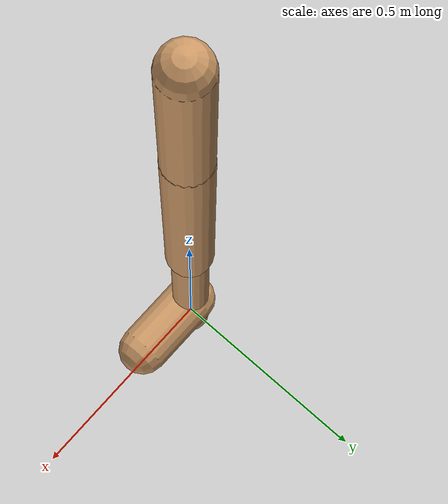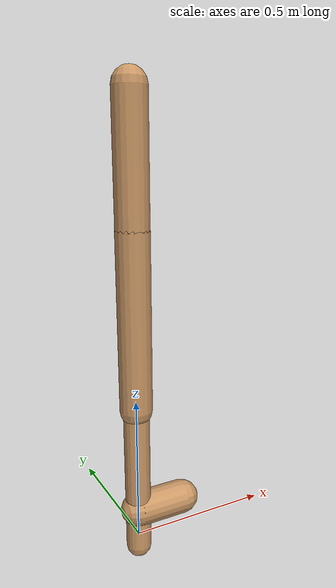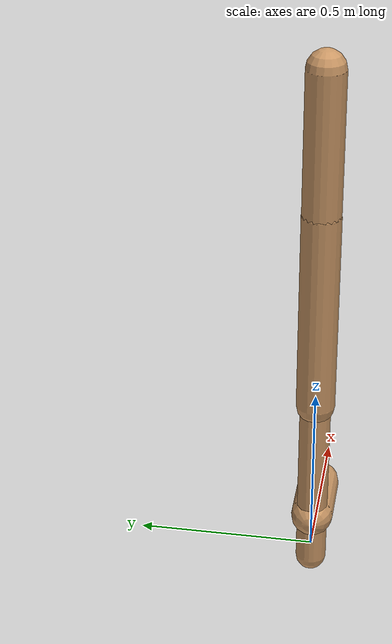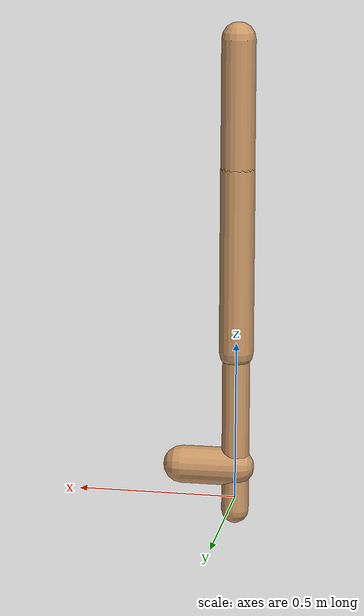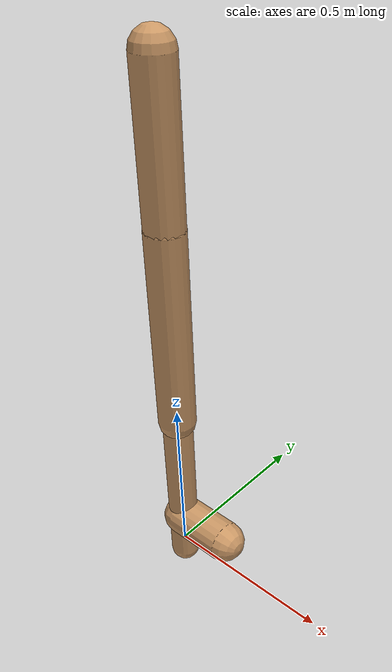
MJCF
<mujoco model="walker2d">
  <compiler angle="degree" coordinate="global" inertiafromgeom="true" />
  <default>
    <joint armature="0.01" damping=".1" limited="true" />
    <geom conaffinity="0" condim="3" contype="1" density="1000" friction="0.8 .1 .1" rgba="0.8 0.6 .4 1" />
  </default>
  <option integrator="RK4" timestep="0.002" />
  <worldbody>

    <body name="torso" pos="0 0 0.26631257897890886">
      <joint armature="0" axis="1 0 0" damping="0" limited="false" name="ignorex" pos="0 0 0" stiffness="0" type="slide" />
      <joint armature="0" axis="0 0 1" damping="0" limited="false" name="ignorez" pos="0 0 0" ref="1.25" stiffness="0" type="slide" />
      <joint armature="0" axis="0 1 0" damping="0" limited="false" name="ignorey" pos="0 0 0" stiffness="0" type="hinge" />
      <geom fromto="0 0 1.45 0 0 1.05" name="torso_geom" size="0.053253575618824045" type="capsule" />
      <body name="thigh">
        <joint axis="0 -1 0" name="thigh_joint" pos="0 0 1.05" range="-150 0" type="hinge" />
        <geom fromto="0.0 0.0 1.05 0.0 0.0 0.47385193627314837" name="thigh_geom" size="0.05404043338890283" type="capsule" />
        <body name="leg" pos="0.0 0.0 -0.1261480637268516">
          <joint axis="0 -1 0" name="leg_joint" pos="0 0 0.6" range="-150 0" type="hinge" />
          <geom fromto="0.0 0.0 0.6 0.0 0.0 -0.040164515252057276" name="leg_geom" size="0.04323234671112226" type="capsule" />
          <body name="foot" pos="0.0 0.0 -0.14016451525205728">
            <joint axis="0 -1 0" name="foot_joint" pos="0 0 0.1" range="-45 45" type="hinge" />
            <geom fromto="0.0 0.0 0.1 0.1695774913202246 0.0 0.1" name="foot_geom" size="0.05937721727105887" type="capsule" />
          </body>
        </body>
      </body>

      <body name="thigh_left">
        <joint axis="0 -1 0" name="thigh_left_joint" pos="0 0 1.05" range="-150 0" type="hinge" />
        <geom fromto="0.0 0.0 1.05 0.0 0.0 0.47385193627314837" name="thigh_left_geom" rgba=".7 .3 .6 1" size="0.05404043338890283" type="capsule" />
        <body name="leg_left" pos="0.0 0.0 -0.1261480637268516">
          <joint axis="0 -1 0" name="leg_left_joint" pos="0 0 0.6" range="-150 0" type="hinge" />
          <geom fromto="0.0 0.0 0.6 0.0 0.0 -0.040164515252057276" name="leg_left_geom" rgba=".7 .3 .6 1" size="0.04323234671112226" type="capsule" />
          <body name="foot_left" pos="0.0 0.0 -0.14016451525205728">
            <joint axis="0 -1 0" name="foot_left_joint" pos="0 0 0.1" range="-45 45" type="hinge" />
            <geom fromto="0.0 0.0 0.1 0.1695774913202246 0.0 0.1" name="foot_left_geom" rgba=".7 .3 .6 1" size="0.05937721727105887" type="capsule" />
          </body>
        </body>
      </body>
    </body>
  </worldbody>
  <actuator>

    <motor ctrllimited="true" ctrlrange="-1.0 1.0" gear="100" joint="thigh_joint" />
    <motor ctrllimited="true" ctrlrange="-1.0 1.0" gear="100" joint="leg_joint" />
    <motor ctrllimited="true" ctrlrange="-1.0 1.0" gear="100" joint="foot_joint" />
    <motor ctrllimited="true" ctrlrange="-1.0 1.0" gear="100" joint="thigh_left_joint" />
    <motor ctrllimited="true" ctrlrange="-1.0 1.0" gear="100" joint="leg_left_joint" />
    <motor ctrllimited="true" ctrlrange="-1.0 1.0" gear="100" joint="foot_left_joint" />

  </actuator>
</mujoco>
